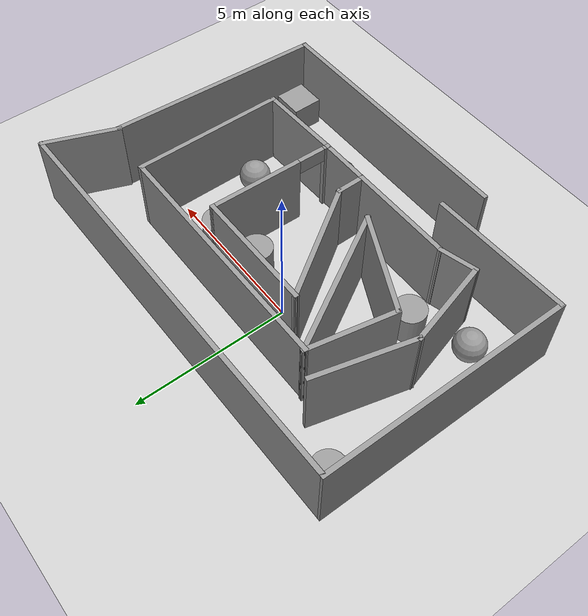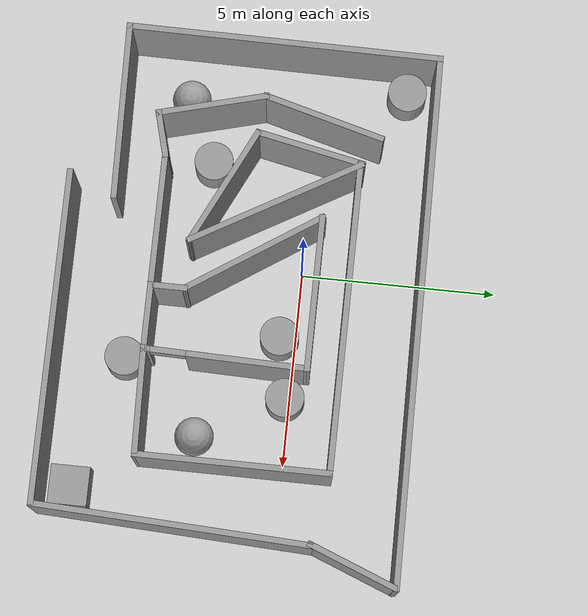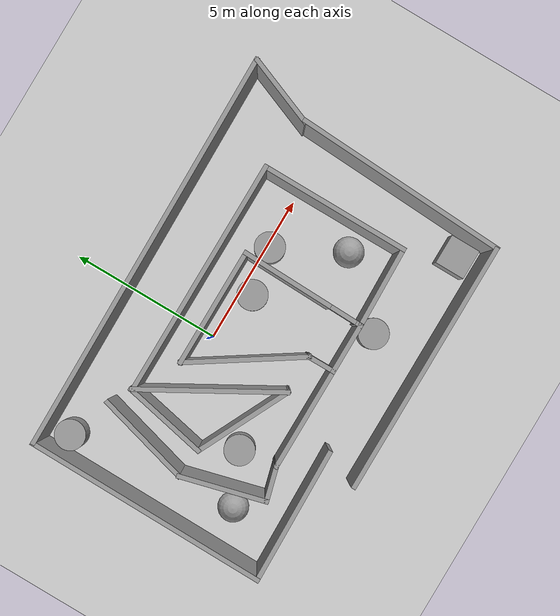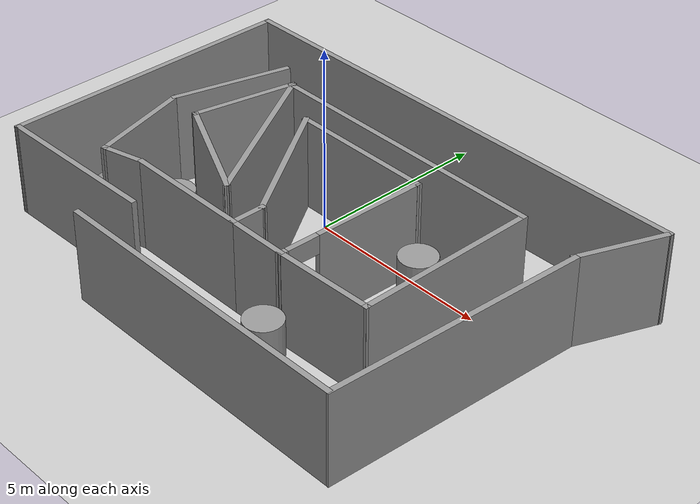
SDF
<sdf version="1.6">
 <world name="default">
  <model name="ground_plane">
   <static>1</static>
   <link name="link">
    <collision name="collision">
     <geometry><plane><normal>0 0 1</normal><size>100 100</size></plane></geometry>
     <surface><friction><ode><mu>100</mu><mu2>50</mu2></ode></friction></surface>
    </collision>
    <visual name="visual">
     <cast_shadows>0</cast_shadows>
     <geometry><plane><normal>0 0 1</normal><size>100 100</size></plane></geometry>
     <material>
      <script><uri>file://media/materials/scripts/gazebo.material</uri><name>Gazebo/Grey</name></script>
     </material>
    </visual>
   </link>
  </model>
  <light name="sun" type="directional">
   <pose>0 0 10 0 -0 0</pose>
   <diffuse>0.8 0.8 0.8 1</diffuse>
   <specular>0.2 0.2 0.2 1</specular>
   <attenuation>
    <range>1000</range>
    <constant>0.9</constant>
    <linear>0.01</linear>
    <quadratic>0.001</quadratic>
   </attenuation>
   <direction>-0.5 0.1 -0.9</direction>
   <spot><inner_angle>0</inner_angle><outer_angle>0</outer_angle><falloff>0</falloff></spot>
  </light>
  <scene><shadows>0</shadows><ambient>0.4 0.4 0.4 1</ambient><background>0.7 0.7 0.7 1</background></scene>
  <physics type="ode">
   <real_time_update_rate>1000</real_time_update_rate>
   <max_step_size>0.001</max_step_size>
   <real_time_factor>1</real_time_factor>
   <ode>
    <solver>
     <type>quick</type>
     <iters>150</iters>
     <precon_iters>0</precon_iters>
     <sor>1.4</sor>
     <use_dynamic_moi_rescaling>1</use_dynamic_moi_rescaling>
    </solver>
    <constraints>
     <cfm>1e-05</cfm>
     <erp>0.2</erp>
     <contact_max_correcting_vel>2000</contact_max_correcting_vel>
     <contact_surface_layer>0.01</contact_surface_layer>
    </constraints>
   </ode>
  </physics>
  <gravity>0 0 -9.8</gravity>
  <magnetic_field>6e-06 2.3e-05 -4.2e-05</magnetic_field>
  <atmosphere type="adiabatic"/>
  <audio><device>default</device></audio>
  <spherical_coordinates>
   <surface_model>EARTH_WGS84</surface_model>
   <latitude_deg>0</latitude_deg>
   <longitude_deg>0</longitude_deg>
   <elevation>0</elevation>
   <heading_deg>0</heading_deg>
  </spherical_coordinates>
  <model name="building">
   <link name="Wall_0">
    <pose>0.438987 -2.11863 0 0 0 -1.5708</pose>
    <visual name="Wall_0_Visual">
     <pose>0 0 1.25 0 -0 0</pose>
     <geometry><box><size>1 0.15 2.5</size></box></geometry>
     <material>
      <script><uri>file://media/materials/scripts/gazebo.material</uri><name>Gazebo/Grey</name></script>
      <ambient>1 1 1 1</ambient>
      <shader type="pixel"/>
     </material>
     <meta><layer>0</layer></meta>
    </visual>
    <collision name="Wall_0_Collision">
     <pose>0 0 1.25 0 -0 0</pose>
     <geometry><box><size>1 0.15 2.5</size></box></geometry>
     <surface>
      <friction>
       <ode><mu>1</mu><mu2>1</mu2><fdir1>0 0 0</fdir1><slip1>0</slip1><slip2>0</slip2></ode>
       <torsional>
        <coefficient>1</coefficient>
        <patch_radius>0</patch_radius>
        <surface_radius>0</surface_radius>
        <use_patch_radius>1</use_patch_radius>
        <ode><slip>0</slip></ode>
       </torsional>
      </friction>
      <bounce><restitution_coefficient>0</restitution_coefficient><threshold>1e+06</threshold></bounce>
      <contact>
       <collide_without_contact>0</collide_without_contact>
       <collide_without_contact_bitmask>1</collide_without_contact_bitmask>
       <collide_bitmask>1</collide_bitmask>
       <ode>
        <soft_cfm>0</soft_cfm>
        <soft_erp>0.2</soft_erp>
        <kp>1e+13</kp>
        <kd>1</kd>
        <max_vel>0.01</max_vel>
        <min_depth>0</min_depth>
       </ode>
       <bullet>
        <split_impulse>1</split_impulse>
        <split_impulse_penetration_threshold>-0.01</split_impulse_penetration_threshold>
        <soft_cfm>0</soft_cfm>
        <soft_erp>0.2</soft_erp>
        <kp>1e+13</kp>
        <kd>1</kd>
       </bullet>
      </contact>
     </surface>
    </collision>
   </link>
   <link name="Wall_1">
    <pose>1.2437 -2.54363 0 0 -0 0</pose>
    <visual name="Wall_1_Visual">
     <pose>0 0 1.25 0 -0 0</pose>
     <geometry><box><size>1.75943 0.15 2.5</size></box></geometry>
     <material>
      <script><uri>file://media/materials/scripts/gazebo.material</uri><name>Gazebo/Grey</name></script>
      <ambient>1 1 1 1</ambient>
      <shader type="pixel"/>
     </material>
     <meta><layer>0</layer></meta>
    </visual>
    <collision name="Wall_1_Collision">
     <pose>0 0 1.25 0 -0 0</pose>
     <geometry><box><size>1.75943 0.15 2.5</size></box></geometry>
     <surface>
      <friction>
       <ode><mu>1</mu><mu2>1</mu2><fdir1>0 0 0</fdir1><slip1>0</slip1><slip2>0</slip2></ode>
       <torsional>
        <coefficient>1</coefficient>
        <patch_radius>0</patch_radius>
        <surface_radius>0</surface_radius>
        <use_patch_radius>1</use_patch_radius>
        <ode><slip>0</slip></ode>
       </torsional>
      </friction>
      <bounce><restitution_coefficient>0</restitution_coefficient><threshold>1e+06</threshold></bounce>
      <contact>
       <collide_without_contact>0</collide_without_contact>
       <collide_without_contact_bitmask>1</collide_without_contact_bitmask>
       <collide_bitmask>1</collide_bitmask>
       <ode>
        <soft_cfm>0</soft_cfm>
        <soft_erp>0.2</soft_erp>
        <kp>1e+13</kp>
        <kd>1</kd>
        <max_vel>0.01</max_vel>
        <min_depth>0</min_depth>
       </ode>
       <bullet>
        <split_impulse>1</split_impulse>
        <split_impulse_penetration_threshold>-0.01</split_impulse_penetration_threshold>
        <soft_cfm>0</soft_cfm>
        <soft_erp>0.2</soft_erp>
        <kp>1e+13</kp>
        <kd>1</kd>
       </bullet>
      </contact>
     </surface>
    </collision>
   </link>
   <link name="Wall_10">
    <pose>-1.97823 0.352687 0 0 -0 2.08917</pose>
    <visual name="Wall_10_Visual">
     <pose>0 0 1.25 0 -0 0</pose>
     <geometry><box><size>4.8616 0.15 2.5</size></box></geometry>
     <material>
      <script><uri>file://media/materials/scripts/gazebo.material</uri><name>Gazebo/Grey</name></script>
      <ambient>1 1 1 1</ambient>
      <shader type="pixel"/>
     </material>
     <meta><layer>0</layer></meta>
    </visual>
    <collision name="Wall_10_Collision">
     <pose>0 0 1.25 0 -0 0</pose>
     <geometry><box><size>4.8616 0.15 2.5</size></box></geometry>
     <surface>
      <friction>
       <ode><mu>1</mu><mu2>1</mu2><fdir1>0 0 0</fdir1><slip1>0</slip1><slip2>0</slip2></ode>
       <torsional>
        <coefficient>1</coefficient>
        <patch_radius>0</patch_radius>
        <surface_radius>0</surface_radius>
        <use_patch_radius>1</use_patch_radius>
        <ode><slip>0</slip></ode>
       </torsional>
      </friction>
      <bounce><restitution_coefficient>0</restitution_coefficient><threshold>1e+06</threshold></bounce>
      <contact>
       <collide_without_contact>0</collide_without_contact>
       <collide_without_contact_bitmask>1</collide_without_contact_bitmask>
       <collide_bitmask>1</collide_bitmask>
       <ode>
        <soft_cfm>0</soft_cfm>
        <soft_erp>0.2</soft_erp>
        <kp>1e+13</kp>
        <kd>1</kd>
        <max_vel>0.01</max_vel>
        <min_depth>0</min_depth>
       </ode>
       <bullet>
        <split_impulse>1</split_impulse>
        <split_impulse_penetration_threshold>-0.01</split_impulse_penetration_threshold>
        <soft_cfm>0</soft_cfm>
        <soft_erp>0.2</soft_erp>
        <kp>1e+13</kp>
        <kd>1</kd>
       </bullet>
      </contact>
     </surface>
    </collision>
   </link>
   <link name="Wall_11">
    <pose>-3.44056 1.07678 0 0 0 -1.77287</pose>
    <visual name="Wall_11_Visual">
     <pose>0 0 1.25 0 -0 0</pose>
     <geometry><box><size>2.89044 0.15 2.5</size></box></geometry>
     <material>
      <script><uri>file://media/materials/scripts/gazebo.material</uri><name>Gazebo/Grey</name></script>
      <ambient>1 1 1 1</ambient>
      <shader type="pixel"/>
     </material>
     <meta><layer>0</layer></meta>
    </visual>
    <collision name="Wall_11_Collision">
     <pose>0 0 1.25 0 -0 0</pose>
     <geometry><box><size>2.89044 0.15 2.5</size></box></geometry>
     <surface>
      <friction>
       <ode><mu>1</mu><mu2>1</mu2><fdir1>0 0 0</fdir1><slip1>0</slip1><slip2>0</slip2></ode>
       <torsional>
        <coefficient>1</coefficient>
        <patch_radius>0</patch_radius>
        <surface_radius>0</surface_radius>
        <use_patch_radius>1</use_patch_radius>
        <ode><slip>0</slip></ode>
       </torsional>
      </friction>
      <bounce><restitution_coefficient>0</restitution_coefficient><threshold>1e+06</threshold></bounce>
      <contact>
       <collide_without_contact>0</collide_without_contact>
       <collide_without_contact_bitmask>1</collide_without_contact_bitmask>
       <collide_bitmask>1</collide_bitmask>
       <ode>
        <soft_cfm>0</soft_cfm>
        <soft_erp>0.2</soft_erp>
        <kp>1e+13</kp>
        <kd>1</kd>
        <max_vel>0.01</max_vel>
        <min_depth>0</min_depth>
       </ode>
       <bullet>
        <split_impulse>1</split_impulse>
        <split_impulse_penetration_threshold>-0.01</split_impulse_penetration_threshold>
        <soft_cfm>0</soft_cfm>
        <soft_erp>0.2</soft_erp>
        <kp>1e+13</kp>
        <kd>1</kd>
       </bullet>
      </contact>
     </surface>
    </collision>
   </link>
   <link name="Wall_13">
    <pose>-3.15323 2.38785 0 0 0 -2.18014</pose>
    <visual name="Wall_13_Visual">
     <pose>0 0 1.25 0 -0 0</pose>
     <geometry><box><size>0.177206 0.15 2.5</size></box></geometry>
     <material>
      <script><uri>file://media/materials/scripts/gazebo.material</uri><name>Gazebo/Grey</name></script>
      <ambient>1 1 1 1</ambient>
      <shader type="pixel"/>
     </material>
     <meta><layer>0</layer></meta>
    </visual>
    <collision name="Wall_13_Collision">
     <pose>0 0 1.25 0 -0 0</pose>
     <geometry><box><size>0.177206 0.15 2.5</size></box></geometry>
     <surface>
      <friction>
       <ode><mu>1</mu><mu2>1</mu2><fdir1>0 0 0</fdir1><slip1>0</slip1><slip2>0</slip2></ode>
       <torsional>
        <coefficient>1</coefficient>
        <patch_radius>0</patch_radius>
        <surface_radius>0</surface_radius>
        <use_patch_radius>1</use_patch_radius>
        <ode><slip>0</slip></ode>
       </torsional>
      </friction>
      <bounce><restitution_coefficient>0</restitution_coefficient><threshold>1e+06</threshold></bounce>
      <contact>
       <collide_without_contact>0</collide_without_contact>
       <collide_without_contact_bitmask>1</collide_without_contact_bitmask>
       <collide_bitmask>1</collide_bitmask>
       <ode>
        <soft_cfm>0</soft_cfm>
        <soft_erp>0.2</soft_erp>
        <kp>1e+13</kp>
        <kd>1</kd>
        <max_vel>0.01</max_vel>
        <min_depth>0</min_depth>
       </ode>
       <bullet>
        <split_impulse>1</split_impulse>
        <split_impulse_penetration_threshold>-0.01</split_impulse_penetration_threshold>
        <soft_cfm>0</soft_cfm>
        <soft_erp>0.2</soft_erp>
        <kp>1e+13</kp>
        <kd>1</kd>
       </bullet>
      </contact>
     </surface>
    </collision>
   </link>
   <link name="Wall_14">
    <pose>0.763987 2.37669 0 0 -0 0</pose>
    <visual name="Wall_14_Visual">
     <pose>0 0 1.25 0 -0 0</pose>
     <geometry><box><size>8 0.15 2.5</size></box></geometry>
     <material>
      <script><uri>file://media/materials/scripts/gazebo.material</uri><name>Gazebo/Grey</name></script>
      <ambient>1 1 1 1</ambient>
      <shader type="pixel"/>
     </material>
     <meta><layer>0</layer></meta>
    </visual>
    <collision name="Wall_14_Collision">
     <pose>0 0 1.25 0 -0 0</pose>
     <geometry><box><size>8 0.15 2.5</size></box></geometry>
     <surface>
      <friction>
       <ode><mu>1</mu><mu2>1</mu2><fdir1>0 0 0</fdir1><slip1>0</slip1><slip2>0</slip2></ode>
       <torsional>
        <coefficient>1</coefficient>
        <patch_radius>0</patch_radius>
        <surface_radius>0</surface_radius>
        <use_patch_radius>1</use_patch_radius>
        <ode><slip>0</slip></ode>
       </torsional>
      </friction>
      <bounce><restitution_coefficient>0</restitution_coefficient><threshold>1e+06</threshold></bounce>
      <contact>
       <collide_without_contact>0</collide_without_contact>
       <collide_without_contact_bitmask>1</collide_without_contact_bitmask>
       <collide_bitmask>1</collide_bitmask>
       <ode>
        <soft_cfm>0</soft_cfm>
        <soft_erp>0.2</soft_erp>
        <kp>1e+13</kp>
        <kd>1</kd>
        <max_vel>0.01</max_vel>
        <min_depth>0</min_depth>
       </ode>
       <bullet>
        <split_impulse>1</split_impulse>
        <split_impulse_penetration_threshold>-0.01</split_impulse_penetration_threshold>
        <soft_cfm>0</soft_cfm>
        <soft_erp>0.2</soft_erp>
        <kp>1e+13</kp>
        <kd>1</kd>
       </bullet>
      </contact>
     </surface>
    </collision>
   </link>
   <link name="Wall_15">
    <pose>4.68899 -0.048308 0 0 0 -1.5708</pose>
    <visual name="Wall_15_Visual">
     <pose>0 0 1.25 0 -0 0</pose>
     <geometry><box><size>5 0.15 2.5</size></box></geometry>
     <material>
      <script><uri>file://media/materials/scripts/gazebo.material</uri><name>Gazebo/Grey</name></script>
      <ambient>1 1 1 1</ambient>
      <shader type="pixel"/>
     </material>
     <meta><layer>0</layer></meta>
    </visual>
    <collision name="Wall_15_Collision">
     <pose>0 0 1.25 0 -0 0</pose>
     <geometry><box><size>5 0.15 2.5</size></box></geometry>
     <surface>
      <friction>
       <ode><mu>1</mu><mu2>1</mu2><fdir1>0 0 0</fdir1><slip1>0</slip1><slip2>0</slip2></ode>
       <torsional>
        <coefficient>1</coefficient>
        <patch_radius>0</patch_radius>
        <surface_radius>0</surface_radius>
        <use_patch_radius>1</use_patch_radius>
        <ode><slip>0</slip></ode>
       </torsional>
      </friction>
      <bounce><restitution_coefficient>0</restitution_coefficient><threshold>1e+06</threshold></bounce>
      <contact>
       <collide_without_contact>0</collide_without_contact>
       <collide_without_contact_bitmask>1</collide_without_contact_bitmask>
       <collide_bitmask>1</collide_bitmask>
       <ode>
        <soft_cfm>0</soft_cfm>
        <soft_erp>0.2</soft_erp>
        <kp>1e+13</kp>
        <kd>1</kd>
        <max_vel>0.01</max_vel>
        <min_depth>0</min_depth>
       </ode>
       <bullet>
        <split_impulse>1</split_impulse>
        <split_impulse_penetration_threshold>-0.01</split_impulse_penetration_threshold>
        <soft_cfm>0</soft_cfm>
        <soft_erp>0.2</soft_erp>
        <kp>1e+13</kp>
        <kd>1</kd>
       </bullet>
      </contact>
     </surface>
    </collision>
   </link>
   <link name="Wall_16">
    <pose>3.35865 -2.50847 0 0 0 -3.11517</pose>
    <visual name="Wall_16_Visual">
     <pose>0 0 1.25 0 -0 0</pose>
     <geometry><box><size>2.81161 0.15 2.5</size></box></geometry>
     <material>
      <script><uri>file://media/materials/scripts/gazebo.material</uri><name>Gazebo/Grey</name></script>
      <ambient>1 1 1 1</ambient>
      <shader type="pixel"/>
     </material>
     <meta><layer>0</layer></meta>
    </visual>
    <collision name="Wall_16_Collision">
     <pose>0 0 1.25 0 -0 0</pose>
     <geometry><box><size>2.81161 0.15 2.5</size></box></geometry>
     <surface>
      <friction>
       <ode><mu>1</mu><mu2>1</mu2><fdir1>0 0 0</fdir1><slip1>0</slip1><slip2>0</slip2></ode>
       <torsional>
        <coefficient>1</coefficient>
        <patch_radius>0</patch_radius>
        <surface_radius>0</surface_radius>
        <use_patch_radius>1</use_patch_radius>
        <ode><slip>0</slip></ode>
       </torsional>
      </friction>
      <bounce><restitution_coefficient>0</restitution_coefficient><threshold>1e+06</threshold></bounce>
      <contact>
       <collide_without_contact>0</collide_without_contact>
       <collide_without_contact_bitmask>1</collide_without_contact_bitmask>
       <collide_bitmask>1</collide_bitmask>
       <ode>
        <soft_cfm>0</soft_cfm>
        <soft_erp>0.2</soft_erp>
        <kp>1e+13</kp>
        <kd>1</kd>
        <max_vel>0.01</max_vel>
        <min_depth>0</min_depth>
       </ode>
       <bullet>
        <split_impulse>1</split_impulse>
        <split_impulse_penetration_threshold>-0.01</split_impulse_penetration_threshold>
        <soft_cfm>0</soft_cfm>
        <soft_erp>0.2</soft_erp>
        <kp>1e+13</kp>
        <kd>1</kd>
       </bullet>
      </contact>
     </surface>
    </collision>
   </link>
   <link name="Wall_18">
    <pose>-3.44227 -2.68598 0 0 0 -2.87979</pose>
    <visual name="Wall_18_Visual">
     <pose>0 0 1.25 0 -0 0</pose>
     <geometry><box><size>1.25 0.15 2.5</size></box></geometry>
     <material>
      <script><uri>file://media/materials/scripts/gazebo.material</uri><name>Gazebo/Grey</name></script>
      <ambient>1 1 1 1</ambient>
      <shader type="pixel"/>
     </material>
     <meta><layer>0</layer></meta>
    </visual>
    <collision name="Wall_18_Collision">
     <pose>0 0 1.25 0 -0 0</pose>
     <geometry><box><size>1.25 0.15 2.5</size></box></geometry>
     <surface>
      <friction>
       <ode><mu>1</mu><mu2>1</mu2><fdir1>0 0 0</fdir1><slip1>0</slip1><slip2>0</slip2></ode>
       <torsional>
        <coefficient>1</coefficient>
        <patch_radius>0</patch_radius>
        <surface_radius>0</surface_radius>
        <use_patch_radius>1</use_patch_radius>
        <ode><slip>0</slip></ode>
       </torsional>
      </friction>
      <bounce><restitution_coefficient>0</restitution_coefficient><threshold>1e+06</threshold></bounce>
      <contact>
       <collide_without_contact>0</collide_without_contact>
       <collide_without_contact_bitmask>1</collide_without_contact_bitmask>
       <collide_bitmask>1</collide_bitmask>
       <ode>
        <soft_cfm>0</soft_cfm>
        <soft_erp>0.2</soft_erp>
        <kp>1e+13</kp>
        <kd>1</kd>
        <max_vel>0.01</max_vel>
        <min_depth>0</min_depth>
       </ode>
       <bullet>
        <split_impulse>1</split_impulse>
        <split_impulse_penetration_threshold>-0.01</split_impulse_penetration_threshold>
        <soft_cfm>0</soft_cfm>
        <soft_erp>0.2</soft_erp>
        <kp>1e+13</kp>
        <kd>1</kd>
       </bullet>
      </contact>
     </surface>
    </collision>
   </link>
   <link name="Wall_19">
    <pose>-4.32381 -1.49718 0 0 -0 1.8281</pose>
    <visual name="Wall_19_Visual">
     <pose>0 0 1.25 0 -0 0</pose>
     <geometry><box><size>2.90292 0.15 2.5</size></box></geometry>
     <material>
      <script><uri>file://media/materials/scripts/gazebo.material</uri><name>Gazebo/Grey</name></script>
      <ambient>1 1 1 1</ambient>
      <shader type="pixel"/>
     </material>
     <meta><layer>0</layer></meta>
    </visual>
    <collision name="Wall_19_Collision">
     <pose>0 0 1.25 0 -0 0</pose>
     <geometry><box><size>2.90292 0.15 2.5</size></box></geometry>
     <surface>
      <friction>
       <ode><mu>1</mu><mu2>1</mu2><fdir1>0 0 0</fdir1><slip1>0</slip1><slip2>0</slip2></ode>
       <torsional>
        <coefficient>1</coefficient>
        <patch_radius>0</patch_radius>
        <surface_radius>0</surface_radius>
        <use_patch_radius>1</use_patch_radius>
        <ode><slip>0</slip></ode>
       </torsional>
      </friction>
      <bounce><restitution_coefficient>0</restitution_coefficient><threshold>1e+06</threshold></bounce>
      <contact>
       <collide_without_contact>0</collide_without_contact>
       <collide_without_contact_bitmask>1</collide_without_contact_bitmask>
       <collide_bitmask>1</collide_bitmask>
       <ode>
        <soft_cfm>0</soft_cfm>
        <soft_erp>0.2</soft_erp>
        <kp>1e+13</kp>
        <kd>1</kd>
        <max_vel>0.01</max_vel>
        <min_depth>0</min_depth>
       </ode>
       <bullet>
        <split_impulse>1</split_impulse>
        <split_impulse_penetration_threshold>-0.01</split_impulse_penetration_threshold>
        <soft_cfm>0</soft_cfm>
        <soft_erp>0.2</soft_erp>
        <kp>1e+13</kp>
        <kd>1</kd>
       </bullet>
      </contact>
     </surface>
    </collision>
   </link>
   <link name="Wall_2">
    <pose>2.0987 -0.493627 0 0 -0 1.54627</pose>
    <visual name="Wall_2_Visual_0">
     <pose>-2.00811 0 1.25 0 -0 0</pose>
     <geometry><box><size>0.235014 0.15 2.5</size></box></geometry>
     <material>
      <script><uri>file://media/materials/scripts/gazebo.material</uri><name>Gazebo/Grey</name></script>
      <ambient>1 1 1 1</ambient>
      <shader type="pixel"/>
     </material>
     <meta><layer>0</layer></meta>
    </visual>
    <visual name="Wall_2_Visual_1">
     <pose>0.567507 0 1.25 0 -0 0</pose>
     <geometry><box><size>3.11622 0.15 2.5</size></box></geometry>
     <material>
      <script><uri>file://media/materials/scripts/gazebo.material</uri><name>Gazebo/Grey</name></script>
      <ambient>1 1 1 1</ambient>
      <shader type="pixel"/>
     </material>
     <meta><layer>0</layer></meta>
    </visual>
    <visual name="Wall_2_Visual_2">
     <pose>-1.4406 0 2.25 0 -0 0</pose>
     <geometry><box><size>0.9 0.15 0.5</size></box></geometry>
     <material>
      <script><uri>file://media/materials/scripts/gazebo.material</uri><name>Gazebo/Grey</name></script>
      <ambient>1 1 1 1</ambient>
      <shader type="pixel"/>
     </material>
     <meta><layer>0</layer></meta>
    </visual>
    <collision name="Wall_2_Collision_0">
     <pose>-2.00811 0 1.25 0 -0 0</pose>
     <geometry><box><size>0.235014 0.15 2.5</size></box></geometry>
     <surface>
      <friction>
       <ode><mu>1</mu><mu2>1</mu2><fdir1>0 0 0</fdir1><slip1>0</slip1><slip2>0</slip2></ode>
       <torsional>
        <coefficient>1</coefficient>
        <patch_radius>0</patch_radius>
        <surface_radius>0</surface_radius>
        <use_patch_radius>1</use_patch_radius>
        <ode><slip>0</slip></ode>
       </torsional>
      </friction>
      <bounce><restitution_coefficient>0</restitution_coefficient><threshold>1e+06</threshold></bounce>
      <contact>
       <collide_without_contact>0</collide_without_contact>
       <collide_without_contact_bitmask>1</collide_without_contact_bitmask>
       <collide_bitmask>1</collide_bitmask>
       <ode>
        <soft_cfm>0</soft_cfm>
        <soft_erp>0.2</soft_erp>
        <kp>1e+13</kp>
        <kd>1</kd>
        <max_vel>0.01</max_vel>
        <min_depth>0</min_depth>
       </ode>
       <bullet>
        <split_impulse>1</split_impulse>
        <split_impulse_penetration_threshold>-0.01</split_impulse_penetration_threshold>
        <soft_cfm>0</soft_cfm>
        <soft_erp>0.2</soft_erp>
        <kp>1e+13</kp>
        <kd>1</kd>
       </bullet>
      </contact>
     </surface>
    </collision>
    <collision name="Wall_2_Collision_1">
     <pose>0.567507 0 1.25 0 -0 0</pose>
     <geometry><box><size>3.11622 0.15 2.5</size></box></geometry>
     <surface>
      <friction>
       <ode><mu>1</mu><mu2>1</mu2><fdir1>0 0 0</fdir1><slip1>0</slip1><slip2>0</slip2></ode>
       <torsional>
        <coefficient>1</coefficient>
        <patch_radius>0</patch_radius>
        <surface_radius>0</surface_radius>
        <use_patch_radius>1</use_patch_radius>
        <ode><slip>0</slip></ode>
       </torsional>
      </friction>
      <bounce><restitution_coefficient>0</restitution_coefficient><threshold>1e+06</threshold></bounce>
      <contact>
       <collide_without_contact>0</collide_without_contact>
       <collide_without_contact_bitmask>1</collide_without_contact_bitmask>
       <collide_bitmask>1</collide_bitmask>
       <ode>
        <soft_cfm>0</soft_cfm>
        <soft_erp>0.2</soft_erp>
        <kp>1e+13</kp>
        <kd>1</kd>
        <max_vel>0.01</max_vel>
        <min_depth>0</min_depth>
       </ode>
       <bullet>
        <split_impulse>1</split_impulse>
        <split_impulse_penetration_threshold>-0.01</split_impulse_penetration_threshold>
        <soft_cfm>0</soft_cfm>
        <soft_erp>0.2</soft_erp>
        <kp>1e+13</kp>
        <kd>1</kd>
       </bullet>
      </contact>
     </surface>
    </collision>
    <collision name="Wall_2_Collision_2">
     <pose>-1.4406 0 2.25 0 -0 0</pose>
     <geometry><box><size>0.9 0.15 0.5</size></box></geometry>
     <surface>
      <friction>
       <ode><mu>1</mu><mu2>1</mu2><fdir1>0 0 0</fdir1><slip1>0</slip1><slip2>0</slip2></ode>
       <torsional>
        <coefficient>1</coefficient>
        <patch_radius>0</patch_radius>
        <surface_radius>0</surface_radius>
        <use_patch_radius>1</use_patch_radius>
        <ode><slip>0</slip></ode>
       </torsional>
      </friction>
      <bounce><restitution_coefficient>0</restitution_coefficient><threshold>1e+06</threshold></bounce>
      <contact>
       <collide_without_contact>0</collide_without_contact>
       <collide_without_contact_bitmask>1</collide_without_contact_bitmask>
       <collide_bitmask>1</collide_bitmask>
       <ode>
        <soft_cfm>0</soft_cfm>
        <soft_erp>0.2</soft_erp>
        <kp>1e+13</kp>
        <kd>1</kd>
        <max_vel>0.01</max_vel>
        <min_depth>0</min_depth>
       </ode>
       <bullet>
        <split_impulse>1</split_impulse>
        <split_impulse_penetration_threshold>-0.01</split_impulse_penetration_threshold>
        <soft_cfm>0</soft_cfm>
        <soft_erp>0.2</soft_erp>
        <kp>1e+13</kp>
        <kd>1</kd>
       </bullet>
      </contact>
     </surface>
    </collision>
   </link>
   <link name="Wall_20">
    <pose>-4.27292 1.33114 0 0 -0 1.309</pose>
    <visual name="Wall_20_Visual">
     <pose>0 0 1.25 0 -0 0</pose>
     <geometry><box><size>3.25 0.15 2.5</size></box></geometry>
     <material>
      <script><uri>file://media/materials/scripts/gazebo.material</uri><name>Gazebo/Grey</name></script>
      <ambient>1 1 1 1</ambient>
      <shader type="pixel"/>
     </material>
     <meta><layer>0</layer></meta>
    </visual>
    <collision name="Wall_20_Collision">
     <pose>0 0 1.25 0 -0 0</pose>
     <geometry><box><size>3.25 0.15 2.5</size></box></geometry>
     <surface>
      <friction>
       <ode><mu>1</mu><mu2>1</mu2><fdir1>0 0 0</fdir1><slip1>0</slip1><slip2>0</slip2></ode>
       <torsional>
        <coefficient>1</coefficient>
        <patch_radius>0</patch_radius>
        <surface_radius>0</surface_radius>
        <use_patch_radius>1</use_patch_radius>
        <ode><slip>0</slip></ode>
       </torsional>
      </friction>
      <bounce><restitution_coefficient>0</restitution_coefficient><threshold>1e+06</threshold></bounce>
      <contact>
       <collide_without_contact>0</collide_without_contact>
       <collide_without_contact_bitmask>1</collide_without_contact_bitmask>
       <collide_bitmask>1</collide_bitmask>
       <ode>
        <soft_cfm>0</soft_cfm>
        <soft_erp>0.2</soft_erp>
        <kp>1e+13</kp>
        <kd>1</kd>
        <max_vel>0.01</max_vel>
        <min_depth>0</min_depth>
       </ode>
       <bullet>
        <split_impulse>1</split_impulse>
        <split_impulse_penetration_threshold>-0.01</split_impulse_penetration_threshold>
        <soft_cfm>0</soft_cfm>
        <soft_erp>0.2</soft_erp>
        <kp>1e+13</kp>
        <kd>1</kd>
       </bullet>
      </contact>
     </surface>
    </collision>
   </link>
   <link name="Wall_4">
    <pose>0.223987 1.55637 0 0 -0 3.14159</pose>
    <visual name="Wall_4_Visual">
     <pose>0 0 1.25 0 -0 0</pose>
     <geometry><box><size>4 0.15 2.5</size></box></geometry>
     <material>
      <script><uri>file://media/materials/scripts/gazebo.material</uri><name>Gazebo/Grey</name></script>
      <ambient>1 1 1 1</ambient>
      <shader type="pixel"/>
     </material>
     <meta><layer>0</layer></meta>
    </visual>
    <collision name="Wall_4_Collision">
     <pose>0 0 1.25 0 -0 0</pose>
     <geometry><box><size>4 0.15 2.5</size></box></geometry>
     <surface>
      <friction>
       <ode><mu>1</mu><mu2>1</mu2><fdir1>0 0 0</fdir1><slip1>0</slip1><slip2>0</slip2></ode>
       <torsional>
        <coefficient>1</coefficient>
        <patch_radius>0</patch_radius>
        <surface_radius>0</surface_radius>
        <use_patch_radius>1</use_patch_radius>
        <ode><slip>0</slip></ode>
       </torsional>
      </friction>
      <bounce><restitution_coefficient>0</restitution_coefficient><threshold>1e+06</threshold></bounce>
      <contact>
       <collide_without_contact>0</collide_without_contact>
       <collide_without_contact_bitmask>1</collide_without_contact_bitmask>
       <collide_bitmask>1</collide_bitmask>
       <ode>
        <soft_cfm>0</soft_cfm>
        <soft_erp>0.2</soft_erp>
        <kp>1e+13</kp>
        <kd>1</kd>
        <max_vel>0.01</max_vel>
        <min_depth>0</min_depth>
       </ode>
       <bullet>
        <split_impulse>1</split_impulse>
        <split_impulse_penetration_threshold>-0.01</split_impulse_penetration_threshold>
        <soft_cfm>0</soft_cfm>
        <soft_erp>0.2</soft_erp>
        <kp>1e+13</kp>
        <kd>1</kd>
       </bullet>
      </contact>
     </surface>
    </collision>
   </link>
   <link name="Wall_5">
    <pose>-0.631013 -0.068627 0 0 0 -0.988496</pose>
    <visual name="Wall_5_Visual">
     <pose>0 0 1.25 0 -0 0</pose>
     <geometry><box><size>4.04129 0.15 2.5</size></box></geometry>
     <material>
      <script><uri>file://media/materials/scripts/gazebo.material</uri><name>Gazebo/Grey</name></script>
      <ambient>1 1 1 1</ambient>
      <shader type="pixel"/>
     </material>
     <meta><layer>0</layer></meta>
    </visual>
    <collision name="Wall_5_Collision">
     <pose>0 0 1.25 0 -0 0</pose>
     <geometry><box><size>4.04129 0.15 2.5</size></box></geometry>
     <surface>
      <friction>
       <ode><mu>1</mu><mu2>1</mu2><fdir1>0 0 0</fdir1><slip1>0</slip1><slip2>0</slip2></ode>
       <torsional>
        <coefficient>1</coefficient>
        <patch_radius>0</patch_radius>
        <surface_radius>0</surface_radius>
        <use_patch_radius>1</use_patch_radius>
        <ode><slip>0</slip></ode>
       </torsional>
      </friction>
      <bounce><restitution_coefficient>0</restitution_coefficient><threshold>1e+06</threshold></bounce>
      <contact>
       <collide_without_contact>0</collide_without_contact>
       <collide_without_contact_bitmask>1</collide_without_contact_bitmask>
       <collide_bitmask>1</collide_bitmask>
       <ode>
        <soft_cfm>0</soft_cfm>
        <soft_erp>0.2</soft_erp>
        <kp>1e+13</kp>
        <kd>1</kd>
        <max_vel>0.01</max_vel>
        <min_depth>0</min_depth>
       </ode>
       <bullet>
        <split_impulse>1</split_impulse>
        <split_impulse_penetration_threshold>-0.01</split_impulse_penetration_threshold>
        <soft_cfm>0</soft_cfm>
        <soft_erp>0.2</soft_erp>
        <kp>1e+13</kp>
        <kd>1</kd>
       </bullet>
      </contact>
     </surface>
    </collision>
   </link>
   <link name="Wall_7">
    <pose>-1.23601 -2.54363 0 0 -0 3.14159</pose>
    <visual name="Wall_7_Visual">
     <pose>0 0 1.25 0 -0 0</pose>
     <geometry><box><size>3.5 0.15 2.5</size></box></geometry>
     <material>
      <script><uri>file://media/materials/scripts/gazebo.material</uri><name>Gazebo/Grey</name></script>
      <ambient>1 1 1 1</ambient>
      <shader type="pixel"/>
     </material>
     <meta><layer>0</layer></meta>
    </visual>
    <collision name="Wall_7_Collision">
     <pose>0 0 1.25 0 -0 0</pose>
     <geometry><box><size>3.5 0.15 2.5</size></box></geometry>
     <surface>
      <friction>
       <ode><mu>1</mu><mu2>1</mu2><fdir1>0 0 0</fdir1><slip1>0</slip1><slip2>0</slip2></ode>
       <torsional>
        <coefficient>1</coefficient>
        <patch_radius>0</patch_radius>
        <surface_radius>0</surface_radius>
        <use_patch_radius>1</use_patch_radius>
        <ode><slip>0</slip></ode>
       </torsional>
      </friction>
      <bounce><restitution_coefficient>0</restitution_coefficient><threshold>1e+06</threshold></bounce>
      <contact>
       <collide_without_contact>0</collide_without_contact>
       <collide_without_contact_bitmask>1</collide_without_contact_bitmask>
       <collide_bitmask>1</collide_bitmask>
       <ode>
        <soft_cfm>0</soft_cfm>
        <soft_erp>0.2</soft_erp>
        <kp>1e+13</kp>
        <kd>1</kd>
        <max_vel>0.01</max_vel>
        <min_depth>0</min_depth>
       </ode>
       <bullet>
        <split_impulse>1</split_impulse>
        <split_impulse_penetration_threshold>-0.01</split_impulse_penetration_threshold>
        <soft_cfm>0</soft_cfm>
        <soft_erp>0.2</soft_erp>
        <kp>1e+13</kp>
        <kd>1</kd>
       </bullet>
      </contact>
     </surface>
    </collision>
   </link>
   <link name="Wall_9">
    <pose>-2.25323 -0.989652 0 0 0 -0.454099</pose>
    <visual name="Wall_9_Visual">
     <pose>0 0 1.25 0 -0 0</pose>
     <geometry><box><size>3.35971 0.15 2.5</size></box></geometry>
     <material>
      <script><uri>file://media/materials/scripts/gazebo.material</uri><name>Gazebo/Grey</name></script>
      <ambient>1 1 1 1</ambient>
      <shader type="pixel"/>
     </material>
     <meta><layer>0</layer></meta>
    </visual>
    <collision name="Wall_9_Collision">
     <pose>0 0 1.25 0 -0 0</pose>
     <geometry><box><size>3.35971 0.15 2.5</size></box></geometry>
     <surface>
      <friction>
       <ode><mu>1</mu><mu2>1</mu2><fdir1>0 0 0</fdir1><slip1>0</slip1><slip2>0</slip2></ode>
       <torsional>
        <coefficient>1</coefficient>
        <patch_radius>0</patch_radius>
        <surface_radius>0</surface_radius>
        <use_patch_radius>1</use_patch_radius>
        <ode><slip>0</slip></ode>
       </torsional>
      </friction>
      <bounce><restitution_coefficient>0</restitution_coefficient><threshold>1e+06</threshold></bounce>
      <contact>
       <collide_without_contact>0</collide_without_contact>
       <collide_without_contact_bitmask>1</collide_without_contact_bitmask>
       <collide_bitmask>1</collide_bitmask>
       <ode>
        <soft_cfm>0</soft_cfm>
        <soft_erp>0.2</soft_erp>
        <kp>1e+13</kp>
        <kd>1</kd>
        <max_vel>0.01</max_vel>
        <min_depth>0</min_depth>
       </ode>
       <bullet>
        <split_impulse>1</split_impulse>
        <split_impulse_penetration_threshold>-0.01</split_impulse_penetration_threshold>
        <soft_cfm>0</soft_cfm>
        <soft_erp>0.2</soft_erp>
        <kp>1e+13</kp>
        <kd>1</kd>
       </bullet>
      </contact>
     </surface>
    </collision>
   </link>
   <static>1</static>
   <pose>0.607551 -1.17182 0 0 -0 0</pose>
  </model>
  <model name="Untitled">
   <pose>1.20483 -1.47554 0 0 -0 0</pose>
   <link name="Wall_22">
    <collision name="Wall_22_Collision">
     <geometry><box><size>8.5 0.15 2.5</size></box></geometry>
     <pose>0 0 1.25 0 -0 0</pose>
    </collision>
    <visual name="Wall_22_Visual">
     <pose>0 0 1.25 0 -0 0</pose>
     <geometry><box><size>8.5 0.15 2.5</size></box></geometry>
     <material>
      <script><uri>file://media/materials/scripts/gazebo.material</uri><name>Gazebo/Grey</name></script>
      <ambient>1 1 1 1</ambient>
     </material>
     <meta><layer>0</layer></meta>
    </visual>
    <pose>1.35258 -4.57596 0 0 -0 0</pose>
   </link>
   <link name="Wall_23">
    <collision name="Wall_23_Collision">
     <geometry><box><size>7.10545 0.15 2.5</size></box></geometry>
     <pose>0 0 1.25 0 -0 0</pose>
    </collision>
    <visual name="Wall_23_Visual">
     <pose>0 0 1.25 0 -0 0</pose>
     <geometry><box><size>7.10545 0.15 2.5</size></box></geometry>
     <material>
      <script><uri>file://media/materials/scripts/gazebo.material</uri><name>Gazebo/Grey</name></script>
      <ambient>1 1 1 1</ambient>
     </material>
     <meta><layer>0</layer></meta>
    </visual>
    <pose>5.72906 -1.10243 0 0 -0 1.52164</pose>
   </link>
   <link name="Wall_24">
    <collision name="Wall_24_Collision">
     <geometry><box><size>2.48945 0.15 2.5</size></box></geometry>
     <pose>0 0 1.25 0 -0 0</pose>
    </collision>
    <visual name="Wall_24_Visual">
     <pose>0 0 1.25 0 -0 0</pose>
     <geometry><box><size>2.48945 0.15 2.5</size></box></geometry>
     <material>
      <script><uri>file://media/materials/scripts/gazebo.material</uri><name>Gazebo/Grey</name></script>
      <ambient>1 1 1 1</ambient>
     </material>
     <meta><layer>0</layer></meta>
    </visual>
    <pose>6.29762 3.4596 0 0 -0 1.19596</pose>
   </link>
   <link name="Wall_25">
    <collision name="Wall_25_Collision">
     <geometry><box><size>13.5325 0.15 2.5</size></box></geometry>
     <pose>0 0 1.25 0 -0 0</pose>
    </collision>
    <visual name="Wall_25_Visual">
     <pose>0 0 1.25 0 -0 0</pose>
     <geometry><box><size>13.5325 0.15 2.5</size></box></geometry>
     <material>
      <script><uri>file://media/materials/scripts/gazebo.material</uri><name>Gazebo/Grey</name></script>
      <ambient>1 1 1 1</ambient>
     </material>
     <meta><layer>0</layer></meta>
    </visual>
    <pose>0.035048 4.50222 0 0 -0 -3.13016</pose>
   </link>
   <link name="Wall_26">
    <collision name="Wall_26_Collision">
     <geometry><box><size>8.07941 0.15 2.5</size></box></geometry>
     <pose>0 0 1.25 0 -0 0</pose>
    </collision>
    <visual name="Wall_26_Visual">
     <pose>0 0 1.25 0 -0 0</pose>
     <geometry><box><size>8.07941 0.15 2.5</size></box></geometry>
     <material>
      <script><uri>file://media/materials/scripts/gazebo.material</uri><name>Gazebo/Grey</name></script>
      <ambient>1 1 1 1</ambient>
     </material>
     <meta><layer>0</layer></meta>
    </visual>
    <pose>-6.71697 0.461161 0 0 -0 -1.57851</pose>
   </link>
   <link name="Wall_27">
    <collision name="Wall_27_Collision">
     <geometry><box><size>4.53263 0.15 2.5</size></box></geometry>
     <pose>0 0 1.25 0 -0 0</pose>
    </collision>
    <visual name="Wall_27_Visual">
     <pose>0 0 1.25 0 -0 0</pose>
     <geometry><box><size>4.53263 0.15 2.5</size></box></geometry>
     <material>
      <script><uri>file://media/materials/scripts/gazebo.material</uri><name>Gazebo/Grey</name></script>
      <ambient>1 1 1 1</ambient>
     </material>
     <meta><layer>0</layer></meta>
    </visual>
    <pose>-4.52613 -3.45754 0 0 -0 0.020941</pose>
   </link>
   <static>1</static>
  </model>
  <model name="unit_cylinder">
   <pose>1.78472 -0.409681 0.499993 4e-06 4e-06 -0</pose>
   <link name="link">
    <inertial>
     <mass>1</mass>
     <inertia><ixx>0.145833</ixx><ixy>0</ixy><ixz>0</ixz><iyy>0.145833</iyy><iyz>0</iyz><izz>0.125</izz></inertia>
    </inertial>
    <collision name="collision">
     <geometry><cylinder><radius>0.5</radius><length>1</length></cylinder></geometry>
    </collision>
    <visual name="visual">
     <geometry><cylinder><radius>0.5</radius><length>1</length></cylinder></geometry>
     <material>
      <script><name>Gazebo/Grey</name><uri>file://media/materials/scripts/gazebo.material</uri></script>
     </material>
    </visual>
   </link>
  </model>
  <model name="unit_sphere">
   <pose>4.51537 -2.32279 0.5 0 -0 0</pose>
   <link name="link">
    <inertial>
     <mass>1</mass>
     <inertia><ixx>0.1</ixx><ixy>0</ixy><ixz>0</ixz><iyy>0.1</iyy><iyz>0</iyz><izz>0.1</izz></inertia>
    </inertial>
    <collision name="collision"><geometry><sphere><radius>0.5</radius></sphere></geometry></collision>
    <visual name="visual">
     <geometry><sphere><radius>0.5</radius></sphere></geometry>
     <material>
      <script><name>Gazebo/Grey</name><uri>file://media/materials/scripts/gazebo.material</uri></script>
     </material>
    </visual>
   </link>
  </model>
  <model name="unit_cylinder_0">
   <pose>3.34636 -0.111427 0.499997 -4e-06 -4e-06 -0</pose>
   <link name="link">
    <inertial>
     <mass>1</mass>
     <inertia><ixx>0.145833</ixx><ixy>0</ixy><ixz>0</ixz><iyy>0.145833</iyy><iyz>0</iyz><izz>0.125</izz></inertia>
    </inertial>
    <collision name="collision">
     <geometry><cylinder><radius>0.5</radius><length>1</length></cylinder></geometry>
    </collision>
    <visual name="visual">
     <geometry><cylinder><radius>0.5</radius><length>1</length></cylinder></geometry>
     <material>
      <script><name>Gazebo/Grey</name><uri>file://media/materials/scripts/gazebo.material</uri></script>
     </material>
    </visual>
   </link>
  </model>
  <model name="unit_cylinder_1">
   <pose>-4.90636 2.24565 0.499997 -4e-06 -4e-06 -0</pose>
   <link name="link">
    <inertial>
     <mass>1</mass>
     <inertia><ixx>0.145833</ixx><ixy>0</ixy><ixz>0</ixz><iyy>0.145833</iyy><iyz>0</iyz><izz>0.125</izz></inertia>
    </inertial>
    <collision name="collision">
     <geometry><cylinder><radius>0.5</radius><length>1</length></cylinder></geometry>
    </collision>
    <visual name="visual">
     <geometry><cylinder><radius>0.5</radius><length>1</length></cylinder></geometry>
     <material>
      <script><name>Gazebo/Grey</name><uri>file://media/materials/scripts/gazebo.material</uri></script>
     </material>
    </visual>
   </link>
  </model>
  <model name="unit_sphere_0">
   <pose>-4.27334 -3.32167 0.5 0 -0 0</pose>
   <link name="link">
    <inertial>
     <mass>1</mass>
     <inertia><ixx>0.1</ixx><ixy>0</ixy><ixz>0</ixz><iyy>0.1</iyy><iyz>0</iyz><izz>0.1</izz></inertia>
    </inertial>
    <collision name="collision"><geometry><sphere><radius>0.5</radius></sphere></geometry></collision>
    <visual name="visual">
     <geometry><sphere><radius>0.5</radius></sphere></geometry>
     <material>
      <script><name>Gazebo/Grey</name><uri>file://media/materials/scripts/gazebo.material</uri></script>
     </material>
    </visual>
   </link>
  </model>
  <model name="unit_box">
   <pose>6.10709 -5.31428 0.5 0 -0 0</pose>
   <link name="link">
    <inertial>
     <mass>1</mass>
     <inertia>
      <ixx>0.166667</ixx>
      <ixy>0</ixy>
      <ixz>0</ixz>
      <iyy>0.166667</iyy>
      <iyz>0</iyz>
      <izz>0.166667</izz>
     </inertia>
    </inertial>
    <collision name="collision"><geometry><box><size>1 1 1</size></box></geometry></collision>
    <visual name="visual">
     <geometry><box><size>1 1 1</size></box></geometry>
     <material>
      <script><name>Gazebo/Grey</name><uri>file://media/materials/scripts/gazebo.material</uri></script>
     </material>
    </visual>
   </link>
  </model>
  <model name="unit_cylinder_2">
   <pose>2.69116 -4.29148 0.5 0 -0 0</pose>
   <link name="link">
    <inertial>
     <mass>1</mass>
     <inertia><ixx>0.145833</ixx><ixy>0</ixy><ixz>0</ixz><iyy>0.145833</iyy><iyz>0</iyz><izz>0.125</izz></inertia>
    </inertial>
    <collision name="collision">
     <geometry><cylinder><radius>0.5</radius><length>1</length></cylinder></geometry>
    </collision>
    <visual name="visual">
     <geometry><cylinder><radius>0.5</radius><length>1</length></cylinder></geometry>
     <material>
      <script><name>Gazebo/Grey</name><uri>file://media/materials/scripts/gazebo.material</uri></script>
     </material>
    </visual>
   </link>
  </model>
  <model name="unit_cylinder_3">
   <pose>-2.59423 -2.55658 0.499997 -4e-06 -4e-06 -0</pose>
   <link name="link">
    <inertial>
     <mass>1</mass>
     <inertia><ixx>0.145833</ixx><ixy>0</ixy><ixz>0</ixz><iyy>0.145833</iyy><iyz>0</iyz><izz>0.125</izz></inertia>
    </inertial>
    <collision name="collision">
     <geometry><cylinder><radius>0.5</radius><length>1</length></cylinder></geometry>
    </collision>
    <visual name="visual">
     <geometry><cylinder><radius>0.5</radius><length>1</length></cylinder></geometry>
     <material>
      <script><name>Gazebo/Grey</name><uri>file://media/materials/scripts/gazebo.material</uri></script>
     </material>
    </visual>
   </link>
  </model>
 </world>
</sdf>
